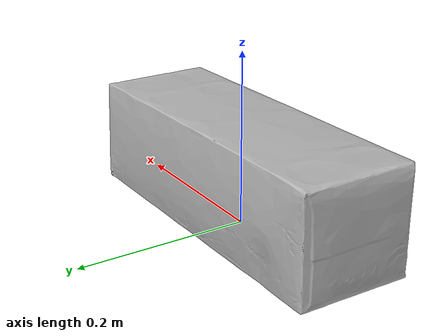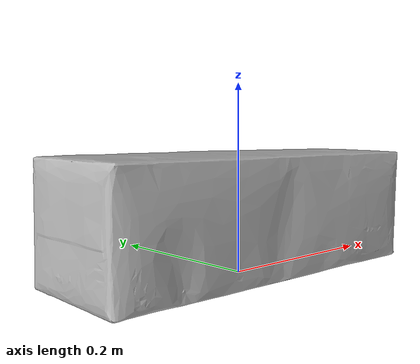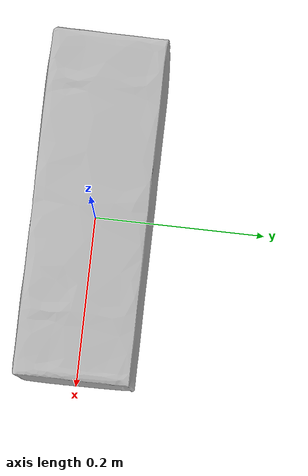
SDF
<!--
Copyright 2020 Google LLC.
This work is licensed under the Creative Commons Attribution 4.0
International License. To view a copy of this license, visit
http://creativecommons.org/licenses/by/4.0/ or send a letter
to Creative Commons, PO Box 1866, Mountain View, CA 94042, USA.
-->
<?xml version="1.0" ?>
<sdf version="1.6">
  <model name="Brisk_Iced_Tea_Lemon_12_12_fl_oz_355_ml_cans_144_fl_oz_426_lt">
    <link name="link_0">
      <visual name="visual">
        <geometry>
          <mesh>
            <uri>meshes/model.obj</uri>
          </mesh>
        </geometry>
      </visual>
      <collision name="collision_0">
        <geometry>
          <mesh>
            <uri>meshes/model.obj</uri>
          </mesh>
        </geometry>
      </collision>
    </link>
  </model>
</sdf>
